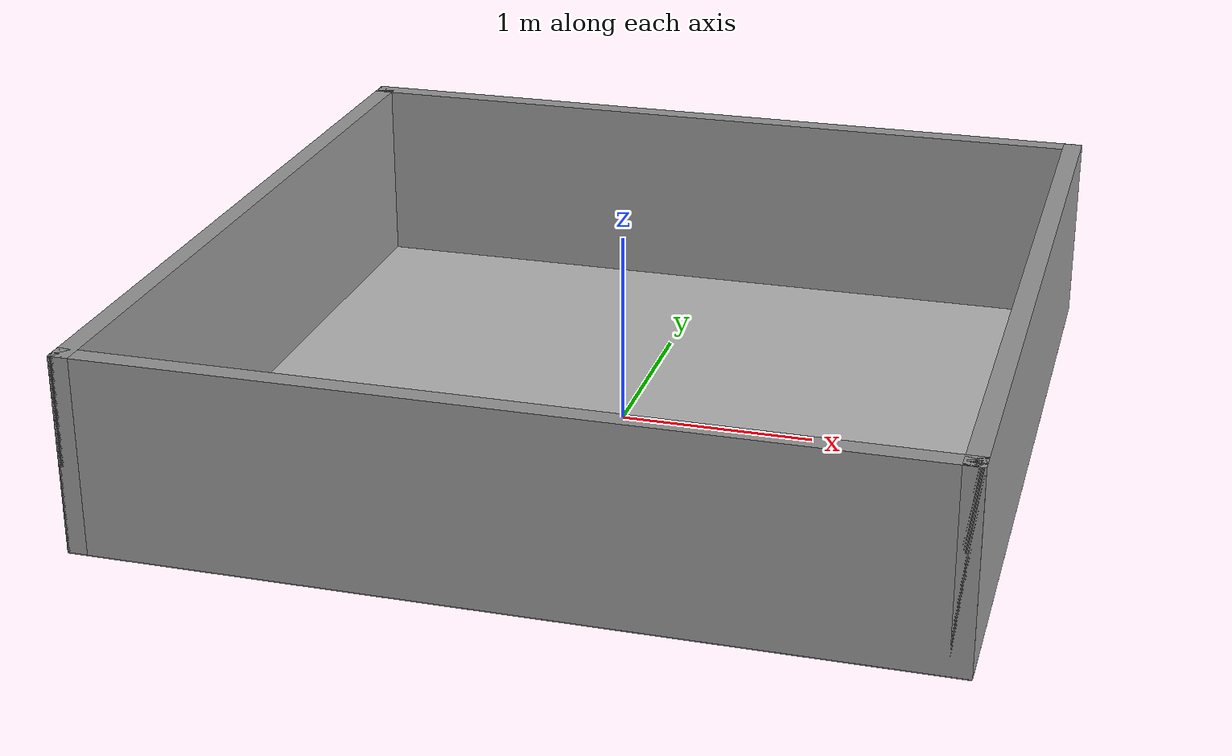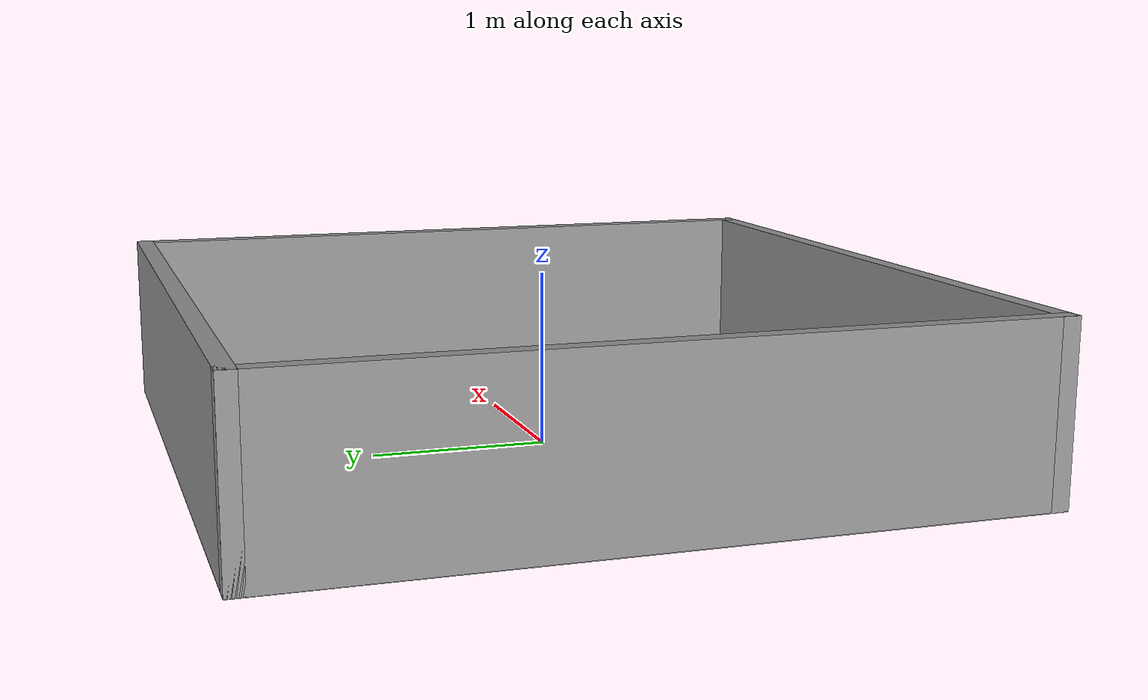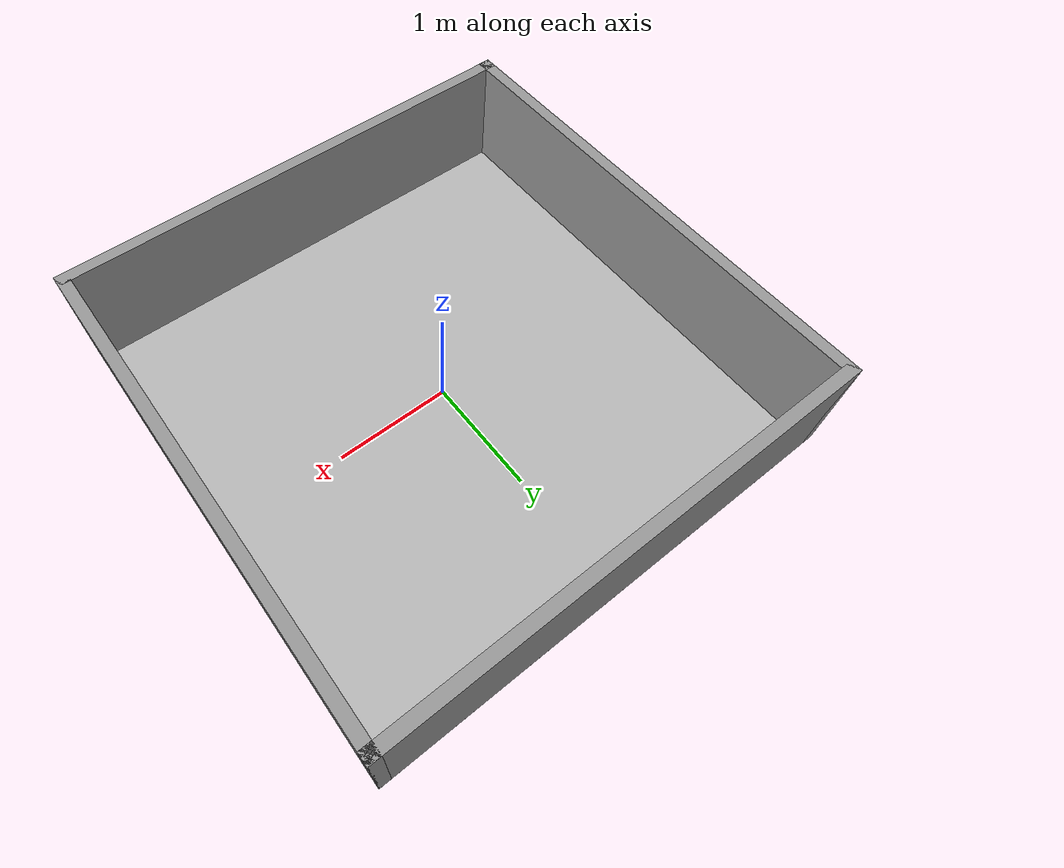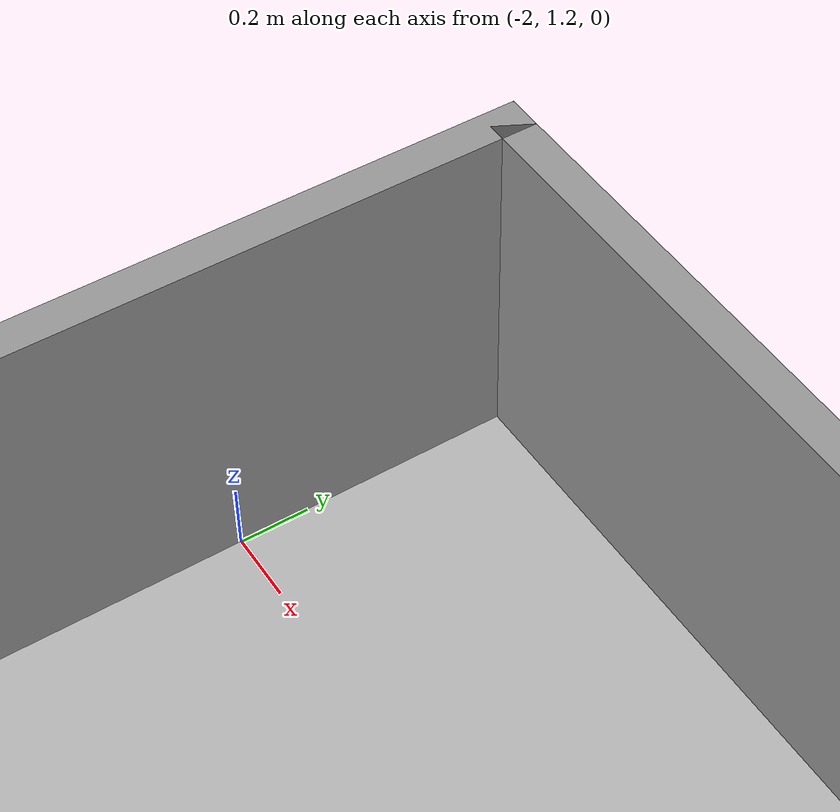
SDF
<?xml version="1.0" ?>
<sdf version="1.6">
  <model name="complete_race_track">
    <static>true</static>

    <!-- 地面路线标识 -->
    <link name="floor_link">
      <visual name="route_visual">
        <geometry>
          <plane>
            <normal>0 0 1</normal>
            <size>4.2 4.2</size>
          </plane>
        </geometry>
        <material>
          <script>
            <uri>model://complete_race_track/materials/scripts</uri>
            <uri>model://complete_race_track/materials/textures</uri>
            <name>RaceTrack/FloorTexture</name>
          </script>
        </material>
        <pose>0 0 0.001 0 0 0</pose>
      </visual>

      <collision name="floor_collision">
        <geometry>
          <plane>
            <normal>0 0 1</normal>
            <size>4.2 4.2</size>
          </plane>
        </geometry>
      </collision>
    </link>

    <!-- 边界墙 - 北墙 -->
    <link name="north_wall">
      <collision name="north_wall_collision">
        <geometry>
          <box>
            <size>4.2 0.1 1.0</size>
          </box>
        </geometry>
      </collision>
      <visual name="north_wall_visual">
        <geometry>
          <box>
            <size>4.2 0.1 1.0</size>
          </box>
        </geometry>
        <material>
          <script>
            <uri>file://media/materials/scripts/gazebo.material</uri>
            <name>Gazebo/Grey</name>
          </script>
        </material>
      </visual>
      <pose>0 2.05 0.5 0 0 0</pose>
    </link>

    <!-- 边界墙 - 南墙 -->
    <link name="south_wall">
      <collision name="south_wall_collision">
        <geometry>
          <box>
            <size>4.2 0.1 1.0</size>
          </box>
        </geometry>
      </collision>
      <visual name="south_wall_visual">
        <geometry>
          <box>
            <size>4.2 0.1 1.0</size>
          </box>
        </geometry>
        <material>
          <script>
            <uri>file://media/materials/scripts/gazebo.material</uri>
            <name>Gazebo/Grey</name>
          </script>
        </material>
      </visual>
      <pose>0 -2.05 0.5 0 0 0</pose>
    </link>

    <!-- 边界墙 - 东墙 -->
    <link name="east_wall">
      <collision name="east_wall_collision">
        <geometry>
          <box>
            <size>0.1 4.2 1.0</size>
          </box>
        </geometry>
      </collision>
      <visual name="east_wall_visual">
        <geometry>
          <box>
            <size>0.1 4.2 1.0</size>
          </box>
        </geometry>
        <material>
          <script>
            <uri>file://media/materials/scripts/gazebo.material</uri>
            <name>Gazebo/Grey</name>
          </script>
        </material>
      </visual>
      <pose>2.05 0 0.5 0 0 0</pose>
    </link>

    <!-- 边界墙 - 西墙 -->
    <link name="west_wall">
      <collision name="west_wall_collision">
        <geometry>
          <box>
            <size>0.1 4.2 1.0</size>
          </box>
        </geometry>
      </collision>
      <visual name="west_wall_visual">
        <geometry>
          <box>
            <size>0.1 4.2 1.0</size>
          </box>
        </geometry>
        <material>
          <script>
            <uri>file://media/materials/scripts/gazebo.material</uri>
            <name>Gazebo/Grey</name>
          </script>
        </material>
      </visual>
      <pose>-2.05 0 0.5 0 0 0</pose>
    </link>

    <!-- 可选：添加四个角柱，增强结构 -->
    <link name="corner_ne">
      <collision name="corner_ne_collision">
        <geometry>
          <box>
            <size>0.1 0.1 1.0</size>
          </box>
        </geometry>
      </collision>
      <visual name="corner_ne_visual">
        <geometry>
          <box>
            <size>0.1 0.1 1.0</size>
          </box>
        </geometry>
        <material>
          <script>
            <uri>file://media/materials/scripts/gazebo.material</uri>
            <name>Gazebo/DarkGrey</name>
          </script>
        </material>
      </visual>
      <pose>2.05 2.05 0.5 0 0 0</pose>
    </link>

    <link name="corner_nw">
      <collision name="corner_nw_collision">
        <geometry>
          <box>
            <size>0.1 0.1 1.0</size>
          </box>
        </geometry>
      </collision>
      <visual name="corner_nw_visual">
        <geometry>
          <box>
            <size>0.1 0.1 1.0</size>
          </box>
        </geometry>
        <material>
          <script>
            <uri>file://media/materials/scripts/gazebo.material</uri>
            <name>Gazebo/DarkGrey</name>
          </script>
        </material>
      </visual>
      <pose>-2.05 2.05 0.5 0 0 0</pose>
    </link>

    <link name="corner_se">
      <collision name="corner_se_collision">
        <geometry>
          <box>
            <size>0.1 0.1 1.0</size>
          </box>
        </geometry>
      </collision>
      <visual name="corner_se_visual">
        <geometry>
          <box>
            <size>0.1 0.1 1.0</size>
          </box>
        </geometry>
        <material>
          <script>
            <uri>file://media/materials/scripts/gazebo.material</uri>
            <name>Gazebo/DarkGrey</name>
          </script>
        </material>
      </visual>
      <pose>2.05 -2.05 0.5 0 0 0</pose>
    </link>

    <link name="corner_sw">
      <collision name="corner_sw_collision">
        <geometry>
          <box>
            <size>0.1 0.1 1.0</size>
          </box>
        </geometry>
      </collision>
      <visual name="corner_sw_visual">
        <geometry>
          <box>
            <size>0.1 0.1 1.0</size>
          </box>
        </geometry>
        <material>
          <script>
            <uri>file://media/materials/scripts/gazebo.material</uri>
            <name>Gazebo/DarkGrey</name>
          </script>
        </material>
      </visual>
      <pose>-2.05 -2.05 0.5 0 0 0</pose>
    </link>

  </model>
</sdf>
